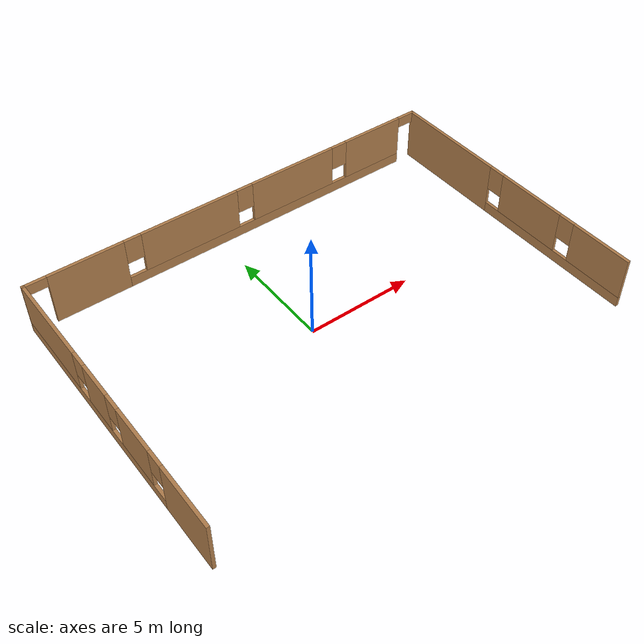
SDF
<?xml version='1.0'?>
<sdf version='1.7'>
  <model name='depth_cam_test'>
    <pose>1.03052 0.122767 0 0 -0 0</pose>
    <link name='Wall_10'>
      <pose>10.05 0.081009 0 0 -0 -1.5708</pose>
      <visual name='Wall_10_Visual_0'>
        <pose>-3.97269 0 1.25 0 -0 0</pose>
        <geometry>
          <box>
            <size>5.522 0.15 2.5</size>
          </box>
        </geometry>
        <material>
          <script>
            <uri>file://media/materials/scripts/gazebo.material</uri>
            <name>Gazebo/Wood</name>
          </script>
          <ambient>1 1 1 1</ambient>
        </material>
        <meta>
          <layer>0</layer>
        </meta>
      </visual>
      <collision name='Wall_10_Collision_0'>
        <geometry>
          <box>
            <size>5.522 0.15 2.5</size>
          </box>
        </geometry>
        <pose>-3.97269 0 1.25 0 -0 0</pose>
      </collision>
      <visual name='Wall_10_Visual_1'>
        <pose>2.761 0 0.25 0 -0 0</pose>
        <geometry>
          <box>
            <size>7.94539 0.15 0.5</size>
          </box>
        </geometry>
        <material>
          <script>
            <uri>file://media/materials/scripts/gazebo.material</uri>
            <name>Gazebo/Wood</name>
          </script>
          <ambient>1 1 1 1</ambient>
        </material>
        <meta>
          <layer>0</layer>
        </meta>
      </visual>
      <collision name='Wall_10_Collision_1'>
        <geometry>
          <box>
            <size>7.94539 0.15 0.5</size>
          </box>
        </geometry>
        <pose>2.761 0 0.25 0 -0 0</pose>
      </collision>
      <visual name='Wall_10_Visual_2'>
        <pose>1.28859 0 1.5 0 -0 0</pose>
        <geometry>
          <box>
            <size>3.40057 0.15 2</size>
          </box>
        </geometry>
        <material>
          <script>
            <uri>file://media/materials/scripts/gazebo.material</uri>
            <name>Gazebo/Wood</name>
          </script>
          <ambient>1 1 1 1</ambient>
        </material>
        <meta>
          <layer>0</layer>
        </meta>
      </visual>
      <collision name='Wall_10_Collision_2'>
        <geometry>
          <box>
            <size>3.40057 0.15 2</size>
          </box>
        </geometry>
        <pose>1.28859 0 1.5 0 -0 0</pose>
      </collision>
      <visual name='Wall_10_Visual_3'>
        <pose>5.26129 0 1.5 0 -0 0</pose>
        <geometry>
          <box>
            <size>2.94482 0.15 2</size>
          </box>
        </geometry>
        <material>
          <script>
            <uri>file://media/materials/scripts/gazebo.material</uri>
            <name>Gazebo/Wood</name>
          </script>
          <ambient>1 1 1 1</ambient>
        </material>
        <meta>
          <layer>0</layer>
        </meta>
      </visual>
      <collision name='Wall_10_Collision_3'>
        <geometry>
          <box>
            <size>2.94482 0.15 2</size>
          </box>
        </geometry>
        <pose>5.26129 0 1.5 0 -0 0</pose>
      </collision>
      <visual name='Wall_10_Visual_4'>
        <pose>-0.811693 0 1.9 0 -0 0</pose>
        <geometry>
          <box>
            <size>0.8 0.15 1.2</size>
          </box>
        </geometry>
        <material>
          <script>
            <uri>file://media/materials/scripts/gazebo.material</uri>
            <name>Gazebo/Wood</name>
          </script>
          <ambient>1 1 1 1</ambient>
        </material>
        <meta>
          <layer>0</layer>
        </meta>
      </visual>
      <collision name='Wall_10_Collision_4'>
        <geometry>
          <box>
            <size>0.8 0.15 1.2</size>
          </box>
        </geometry>
        <pose>-0.811693 0 1.9 0 -0 0</pose>
      </collision>
      <visual name='Wall_10_Visual_5'>
        <pose>3.38888 0 1.9 0 -0 0</pose>
        <geometry>
          <box>
            <size>0.8 0.15 1.2</size>
          </box>
        </geometry>
        <material>
          <script>
            <uri>file://media/materials/scripts/gazebo.material</uri>
            <name>Gazebo/Wood</name>
          </script>
          <ambient>1 1 1 1</ambient>
        </material>
        <meta>
          <layer>0</layer>
        </meta>
      </visual>
      <collision name='Wall_10_Collision_5'>
        <geometry>
          <box>
            <size>0.8 0.15 1.2</size>
          </box>
        </geometry>
        <pose>3.38888 0 1.9 0 -0 0</pose>
      </collision>
    </link>
    <link name='Wall_8'>
      <pose>-10.05 -0.017391 0 0 -0 1.5708</pose>
      <visual name='Wall_8_Visual_0'>
        <pose>-5.36581 0 1.25 0 -0 0</pose>
        <geometry>
          <box>
            <size>2.93257 0.15 2.5</size>
          </box>
        </geometry>
        <material>
          <script>
            <uri>file://media/materials/scripts/gazebo.material</uri>
            <name>Gazebo/Wood</name>
          </script>
          <ambient>1 1 1 1</ambient>
        </material>
        <meta>
          <layer>0</layer>
        </meta>
      </visual>
      <collision name='Wall_8_Collision_0'>
        <geometry>
          <box>
            <size>2.93257 0.15 2.5</size>
          </box>
        </geometry>
        <pose>-5.36581 0 1.25 0 -0 0</pose>
      </collision>
      <visual name='Wall_8_Visual_1'>
        <pose>1.46629 0 0.25 0 -0 0</pose>
        <geometry>
          <box>
            <size>10.7316 0.15 0.5</size>
          </box>
        </geometry>
        <material>
          <script>
            <uri>file://media/materials/scripts/gazebo.material</uri>
            <name>Gazebo/Wood</name>
          </script>
          <ambient>1 1 1 1</ambient>
        </material>
        <meta>
          <layer>0</layer>
        </meta>
      </visual>
      <collision name='Wall_8_Collision_1'>
        <geometry>
          <box>
            <size>10.7316 0.15 0.5</size>
          </box>
        </geometry>
        <pose>1.46629 0 0.25 0 -0 0</pose>
      </collision>
      <visual name='Wall_8_Visual_2'>
        <pose>-1.99016 0 1.5 0 -0 0</pose>
        <geometry>
          <box>
            <size>2.21873 0.15 2</size>
          </box>
        </geometry>
        <material>
          <script>
            <uri>file://media/materials/scripts/gazebo.material</uri>
            <name>Gazebo/Wood</name>
          </script>
          <ambient>1 1 1 1</ambient>
        </material>
        <meta>
          <layer>0</layer>
        </meta>
      </visual>
      <collision name='Wall_8_Collision_2'>
        <geometry>
          <box>
            <size>2.21873 0.15 2</size>
          </box>
        </geometry>
        <pose>-1.99016 0 1.5 0 -0 0</pose>
      </collision>
      <visual name='Wall_8_Visual_3'>
        <pose>0.78419 0 1.5 0 -0 0</pose>
        <geometry>
          <box>
            <size>1.72998 0.15 2</size>
          </box>
        </geometry>
        <material>
          <script>
            <uri>file://media/materials/scripts/gazebo.material</uri>
            <name>Gazebo/Wood</name>
          </script>
          <ambient>1 1 1 1</ambient>
        </material>
        <meta>
          <layer>0</layer>
        </meta>
      </visual>
      <collision name='Wall_8_Collision_3'>
        <geometry>
          <box>
            <size>1.72998 0.15 2</size>
          </box>
        </geometry>
        <pose>0.78419 0 1.5 0 -0 0</pose>
      </collision>
      <visual name='Wall_8_Visual_4'>
        <pose>4.64064 0 1.5 0 -0 0</pose>
        <geometry>
          <box>
            <size>4.38291 0.15 2</size>
          </box>
        </geometry>
        <material>
          <script>
            <uri>file://media/materials/scripts/gazebo.material</uri>
            <name>Gazebo/Wood</name>
          </script>
          <ambient>1 1 1 1</ambient>
        </material>
        <meta>
          <layer>0</layer>
        </meta>
      </visual>
      <collision name='Wall_8_Collision_4'>
        <geometry>
          <box>
            <size>4.38291 0.15 2</size>
          </box>
        </geometry>
        <pose>4.64064 0 1.5 0 -0 0</pose>
      </collision>
      <visual name='Wall_8_Visual_5'>
        <pose>-3.49953 0 1.9 0 -0 0</pose>
        <geometry>
          <box>
            <size>0.8 0.15 1.2</size>
          </box>
        </geometry>
        <material>
          <script>
            <uri>file://media/materials/scripts/gazebo.material</uri>
            <name>Gazebo/Wood</name>
          </script>
          <ambient>1 1 1 1</ambient>
        </material>
        <meta>
          <layer>0</layer>
        </meta>
      </visual>
      <collision name='Wall_8_Collision_5'>
        <geometry>
          <box>
            <size>0.8 0.15 1.2</size>
          </box>
        </geometry>
        <pose>-3.49953 0 1.9 0 -0 0</pose>
      </collision>
      <visual name='Wall_8_Visual_6'>
        <pose>-0.4808 0 1.9 0 -0 0</pose>
        <geometry>
          <box>
            <size>0.8 0.15 1.2</size>
          </box>
        </geometry>
        <material>
          <script>
            <uri>file://media/materials/scripts/gazebo.material</uri>
            <name>Gazebo/Wood</name>
          </script>
          <ambient>1 1 1 1</ambient>
        </material>
        <meta>
          <layer>0</layer>
        </meta>
      </visual>
      <collision name='Wall_8_Collision_6'>
        <geometry>
          <box>
            <size>0.8 0.15 1.2</size>
          </box>
        </geometry>
        <pose>-0.4808 0 1.9 0 -0 0</pose>
      </collision>
      <visual name='Wall_8_Visual_7'>
        <pose>2.04918 0 1.9 0 -0 0</pose>
        <geometry>
          <box>
            <size>0.8 0.15 1.2</size>
          </box>
        </geometry>
        <material>
          <script>
            <uri>file://media/materials/scripts/gazebo.material</uri>
            <name>Gazebo/Wood</name>
          </script>
          <ambient>1 1 1 1</ambient>
        </material>
        <meta>
          <layer>0</layer>
        </meta>
      </visual>
      <collision name='Wall_8_Collision_7'>
        <geometry>
          <box>
            <size>0.8 0.15 1.2</size>
          </box>
        </geometry>
        <pose>2.04918 0 1.9 0 -0 0</pose>
      </collision>
    </link>
    <link name='Wall_9'>
      <pose>0 6.77449 0 0 -0 0</pose>
      <visual name='Wall_9_Visual_0'>
        <pose>-10.0459 0 1.25 0 -0 0</pose>
        <geometry>
          <box>
            <size>0.15818 0.15 2.5</size>
          </box>
        </geometry>
        <material>
          <script>
            <uri>file://media/materials/scripts/gazebo.material</uri>
            <name>Gazebo/Wood</name>
          </script>
          <ambient>1 1 1 1</ambient>
        </material>
        <meta>
          <layer>0</layer>
        </meta>
      </visual>
      <collision name='Wall_9_Collision_0'>
        <geometry>
          <box>
            <size>0.15818 0.15 2.5</size>
          </box>
        </geometry>
        <pose>-10.0459 0 1.25 0 -0 0</pose>
      </collision>
      <visual name='Wall_9_Visual_1'>
        <pose>-7.3353 0 1.25 0 -0 0</pose>
        <geometry>
          <box>
            <size>3.46304 0.15 2.5</size>
          </box>
        </geometry>
        <material>
          <script>
            <uri>file://media/materials/scripts/gazebo.material</uri>
            <name>Gazebo/Wood</name>
          </script>
          <ambient>1 1 1 1</ambient>
        </material>
        <meta>
          <layer>0</layer>
        </meta>
      </visual>
      <collision name='Wall_9_Collision_1'>
        <geometry>
          <box>
            <size>3.46304 0.15 2.5</size>
          </box>
        </geometry>
        <pose>-7.3353 0 1.25 0 -0 0</pose>
      </collision>
      <visual name='Wall_9_Visual_2'>
        <pose>10.0943 0 1.25 0 -0 0</pose>
        <geometry>
          <box>
            <size>0.061385 0.15 2.5</size>
          </box>
        </geometry>
        <material>
          <script>
            <uri>file://media/materials/scripts/gazebo.material</uri>
            <name>Gazebo/Wood</name>
          </script>
          <ambient>1 1 1 1</ambient>
        </material>
        <meta>
          <layer>0</layer>
        </meta>
      </visual>
      <collision name='Wall_9_Collision_2'>
        <geometry>
          <box>
            <size>0.061385 0.15 2.5</size>
          </box>
        </geometry>
        <pose>10.0943 0 1.25 0 -0 0</pose>
      </collision>
      <visual name='Wall_9_Visual_3'>
        <pose>1.77992 0 0.25 0 -0 0</pose>
        <geometry>
          <box>
            <size>14.7674 0.15 0.5</size>
          </box>
        </geometry>
        <material>
          <script>
            <uri>file://media/materials/scripts/gazebo.material</uri>
            <name>Gazebo/Wood</name>
          </script>
          <ambient>1 1 1 1</ambient>
        </material>
        <meta>
          <layer>0</layer>
        </meta>
      </visual>
      <collision name='Wall_9_Collision_3'>
        <geometry>
          <box>
            <size>14.7674 0.15 0.5</size>
          </box>
        </geometry>
        <pose>1.77992 0 0.25 0 -0 0</pose>
      </collision>
      <visual name='Wall_9_Visual_4'>
        <pose>-2.42117 0 1.5 0 -0 0</pose>
        <geometry>
          <box>
            <size>4.76522 0.15 2</size>
          </box>
        </geometry>
        <material>
          <script>
            <uri>file://media/materials/scripts/gazebo.material</uri>
            <name>Gazebo/Wood</name>
          </script>
          <ambient>1 1 1 1</ambient>
        </material>
        <meta>
          <layer>0</layer>
        </meta>
      </visual>
      <collision name='Wall_9_Collision_4'>
        <geometry>
          <box>
            <size>4.76522 0.15 2</size>
          </box>
        </geometry>
        <pose>-2.42117 0 1.5 0 -0 0</pose>
      </collision>
      <visual name='Wall_9_Visual_5'>
        <pose>2.97014 0 1.5 0 -0 0</pose>
        <geometry>
          <box>
            <size>4.41739 0.15 2</size>
          </box>
        </geometry>
        <material>
          <script>
            <uri>file://media/materials/scripts/gazebo.material</uri>
            <name>Gazebo/Wood</name>
          </script>
          <ambient>1 1 1 1</ambient>
        </material>
        <meta>
          <layer>0</layer>
        </meta>
      </visual>
      <collision name='Wall_9_Collision_5'>
        <geometry>
          <box>
            <size>4.41739 0.15 2</size>
          </box>
        </geometry>
        <pose>2.97014 0 1.5 0 -0 0</pose>
      </collision>
      <visual name='Wall_9_Visual_6'>
        <pose>7.57122 0 1.5 0 -0 0</pose>
        <geometry>
          <box>
            <size>3.18478 0.15 2</size>
          </box>
        </geometry>
        <material>
          <script>
            <uri>file://media/materials/scripts/gazebo.material</uri>
            <name>Gazebo/Wood</name>
          </script>
          <ambient>1 1 1 1</ambient>
        </material>
        <meta>
          <layer>0</layer>
        </meta>
      </visual>
      <collision name='Wall_9_Collision_6'>
        <geometry>
          <box>
            <size>3.18478 0.15 2</size>
          </box>
        </geometry>
        <pose>7.57122 0 1.5 0 -0 0</pose>
      </collision>
      <visual name='Wall_9_Visual_7'>
        <pose>-5.20378 0 1.9 0 -0 0</pose>
        <geometry>
          <box>
            <size>0.8 0.15 1.2</size>
          </box>
        </geometry>
        <material>
          <script>
            <uri>file://media/materials/scripts/gazebo.material</uri>
            <name>Gazebo/Wood</name>
          </script>
          <ambient>1 1 1 1</ambient>
        </material>
        <meta>
          <layer>0</layer>
        </meta>
      </visual>
      <collision name='Wall_9_Collision_7'>
        <geometry>
          <box>
            <size>0.8 0.15 1.2</size>
          </box>
        </geometry>
        <pose>-5.20378 0 1.9 0 -0 0</pose>
      </collision>
      <visual name='Wall_9_Visual_8'>
        <pose>0.36144 0 1.9 0 -0 0</pose>
        <geometry>
          <box>
            <size>0.8 0.15 1.2</size>
          </box>
        </geometry>
        <material>
          <script>
            <uri>file://media/materials/scripts/gazebo.material</uri>
            <name>Gazebo/Wood</name>
          </script>
          <ambient>1 1 1 1</ambient>
        </material>
        <meta>
          <layer>0</layer>
        </meta>
      </visual>
      <collision name='Wall_9_Collision_8'>
        <geometry>
          <box>
            <size>0.8 0.15 1.2</size>
          </box>
        </geometry>
        <pose>0.36144 0 1.9 0 -0 0</pose>
      </collision>
      <visual name='Wall_9_Visual_9'>
        <pose>5.57883 0 1.9 0 -0 0</pose>
        <geometry>
          <box>
            <size>0.8 0.15 1.2</size>
          </box>
        </geometry>
        <material>
          <script>
            <uri>file://media/materials/scripts/gazebo.material</uri>
            <name>Gazebo/Wood</name>
          </script>
          <ambient>1 1 1 1</ambient>
        </material>
        <meta>
          <layer>0</layer>
        </meta>
      </visual>
      <collision name='Wall_9_Collision_9'>
        <geometry>
          <box>
            <size>0.8 0.15 1.2</size>
          </box>
        </geometry>
        <pose>5.57883 0 1.9 0 -0 0</pose>
      </collision>
      <visual name='Wall_9_Visual_10'>
        <pose>-9.51682 0 2.25 0 -0 0</pose>
        <geometry>
          <box>
            <size>0.9 0.15 0.5</size>
          </box>
        </geometry>
        <material>
          <script>
            <uri>file://media/materials/scripts/gazebo.material</uri>
            <name>Gazebo/Wood</name>
          </script>
          <ambient>1 1 1 1</ambient>
        </material>
        <meta>
          <layer>0</layer>
        </meta>
      </visual>
      <collision name='Wall_9_Collision_10'>
        <geometry>
          <box>
            <size>0.9 0.15 0.5</size>
          </box>
        </geometry>
        <pose>-9.51682 0 2.25 0 -0 0</pose>
      </collision>
      <visual name='Wall_9_Visual_11'>
        <pose>9.61361 0 2.25 0 -0 0</pose>
        <geometry>
          <box>
            <size>0.9 0.15 0.5</size>
          </box>
        </geometry>
        <material>
          <script>
            <uri>file://media/materials/scripts/gazebo.material</uri>
            <name>Gazebo/Wood</name>
          </script>
          <ambient>1 1 1 1</ambient>
        </material>
        <meta>
          <layer>0</layer>
        </meta>
      </visual>
      <collision name='Wall_9_Collision_11'>
        <geometry>
          <box>
            <size>0.9 0.15 0.5</size>
          </box>
        </geometry>
        <pose>9.61361 0 2.25 0 -0 0</pose>
      </collision>
    </link>
    <static>1</static>
  </model>
</sdf>
